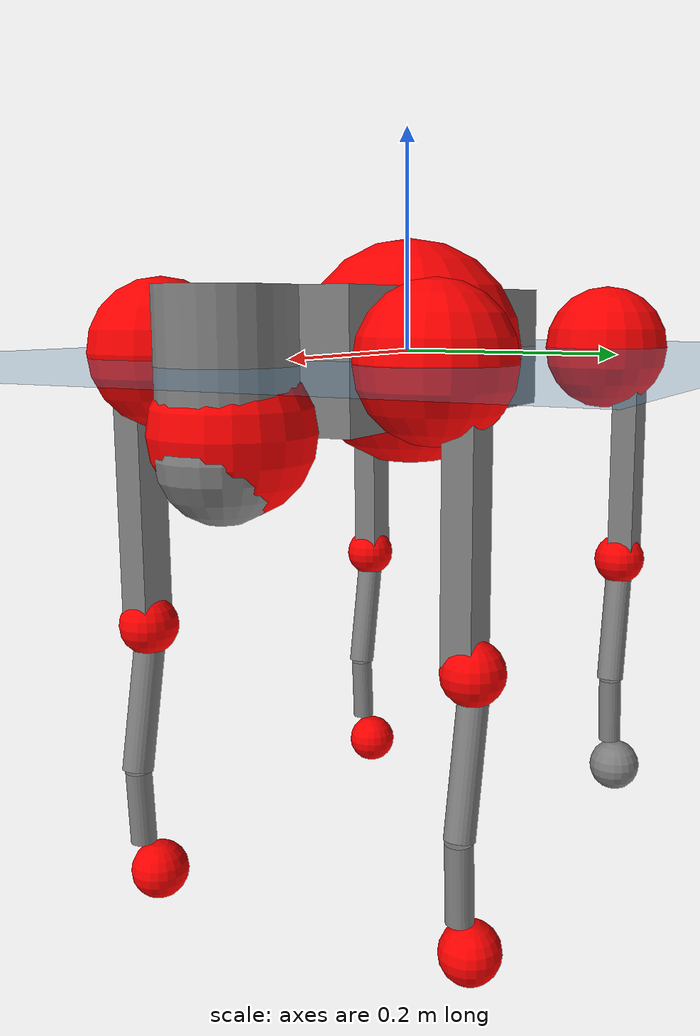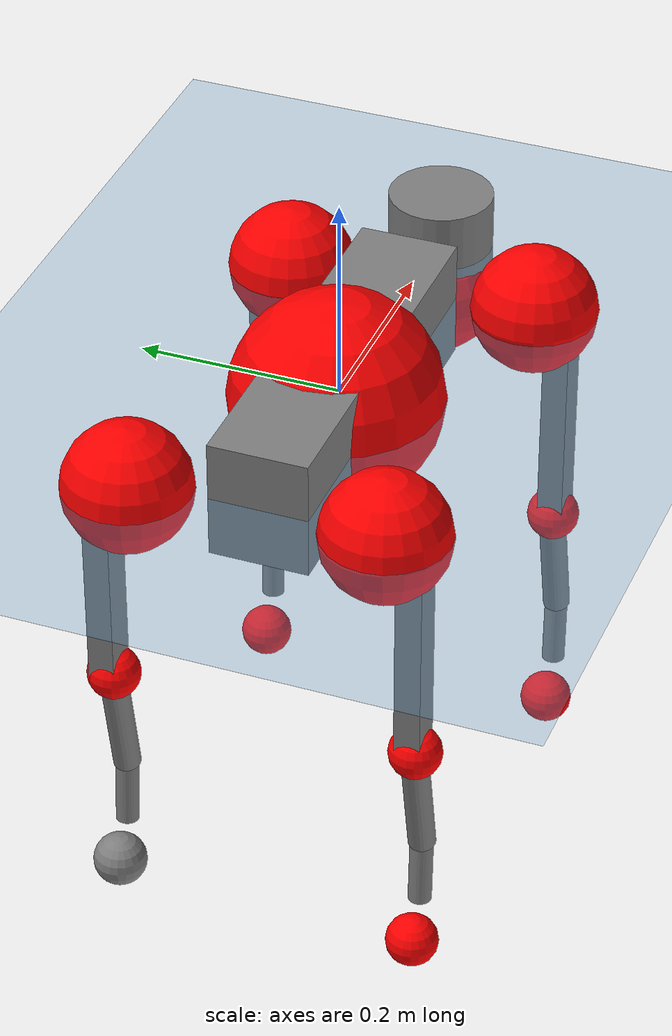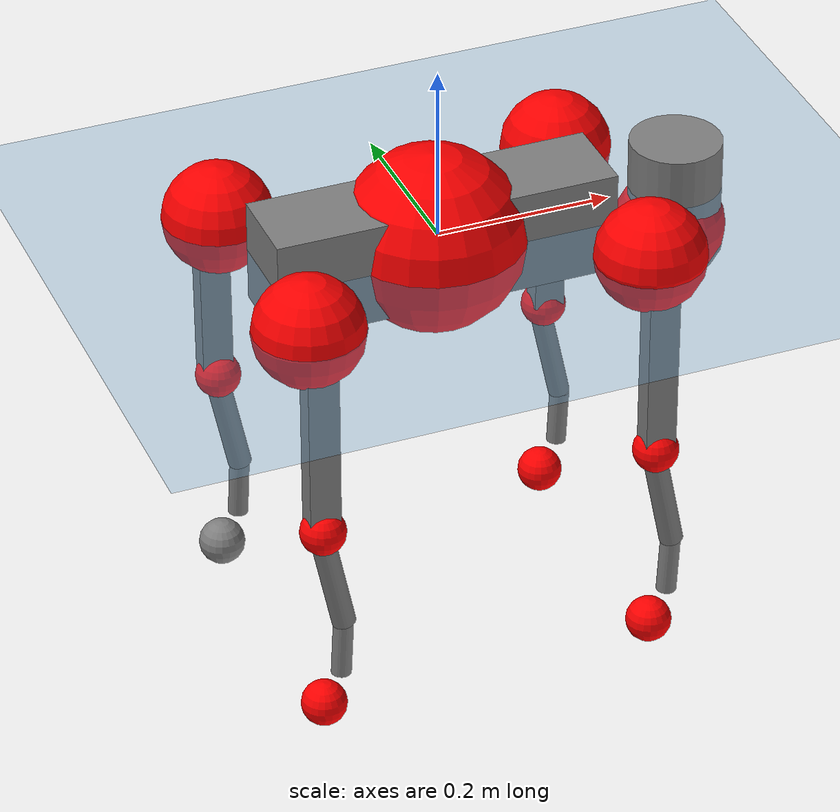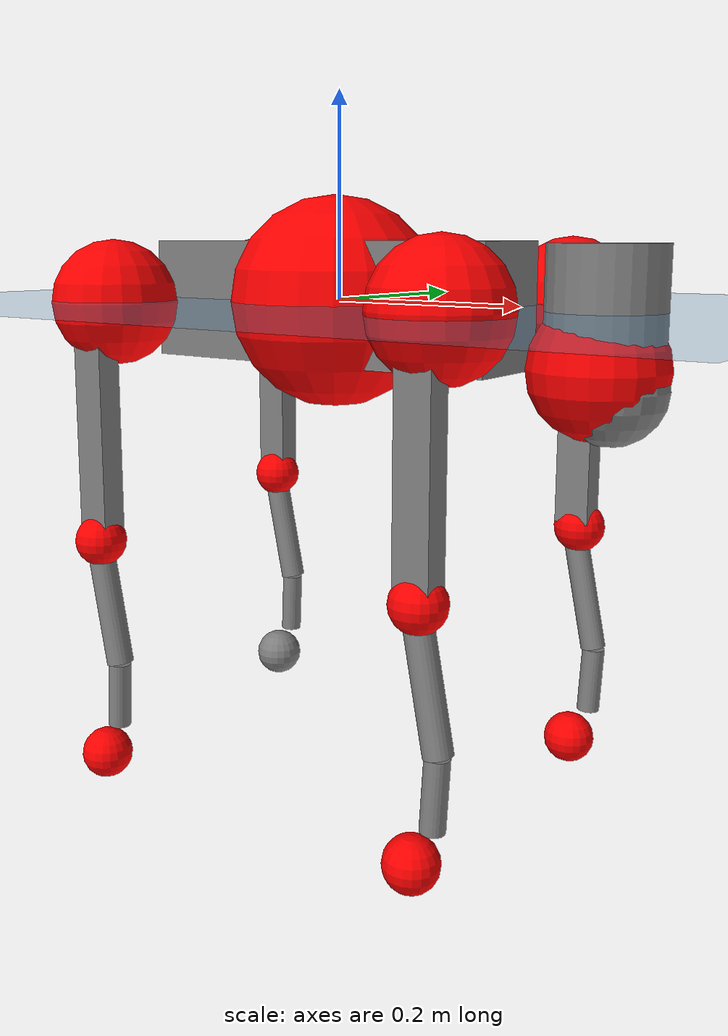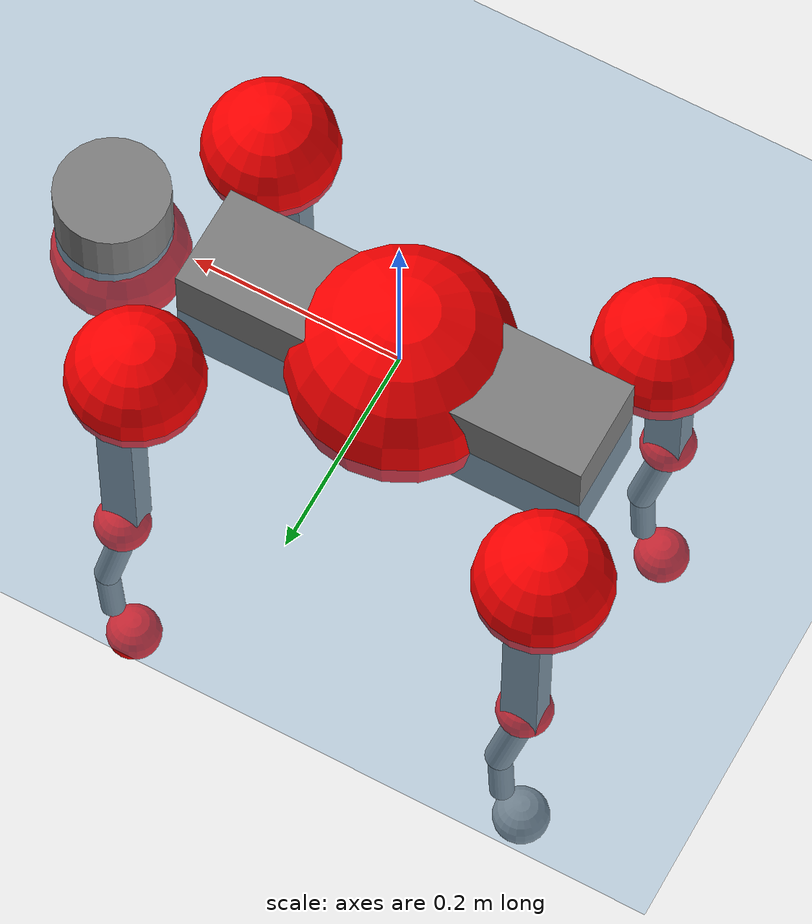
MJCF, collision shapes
<mujoco model="go2">
  <compiler angle="radian" assetdir="assets" balanceinertia="true" inertiafromgeom="false"/>

  <option timestep="0.005" density="1.2" viscosity="2e-05"/>

  <size nkey="1"/>

  <visual>
    <quality shadowsize="8192"/>
    <map shadowclip="0.5"/>
  </visual>

  <default>
    <default class="/">
      <geom contype="0" conaffinity="0" group="1" solref="-1000 -80"/>
      <site size="0.01 0.005 0.005" group="5"/>
      <general forcelimited="true" biastype="affine" gainprm="20" biasprm="0 -20 -0.5"/>
      <default class="go2">
        <joint armature="0.01" damping="0.01" frictionloss="0.2"/>
        <geom condim="1" margin="0.001"/>
        <default class="visual">
          <geom type="mesh" group="2"/>
        </default>
        <default class="collision">
          <geom group="3"/>
          <default class="foot">
            <geom size="0.022 0 0" condim="6" priority="1" friction="0.8 0.02 0.01" solimp="0.015 1 0.022"/>
          </default>
        </default>
        <default class="reward_collision_sphere">
          <geom group="5" rgba="1 0 0 1"/>
        </default>
      </default>
    </default>
  </default>

  <asset>
    <texture type="skybox" colorspace="auto" name="//unnamed_texture_0" builtin="gradient" rgb1="0.95 0.95 0.95" rgb2="0.95 0.95 0.95" width="100" height="600"/>
    <texture type="2d" colorspace="auto" name="texplane" builtin="checker" rgb1="0.345 0.575 0.748" rgb2="0.345 0.575 0.748" markrgb="1 1 1" width="512" height="512"/>
    <material name="MatPlane" class="/" texture="texplane" texuniform="true" texrepeat="2 2" specular="0.9"/>
    <material name="metal" class="/" rgba="0.9 0.95 0.95 1"/>
    <material name="black" class="/" rgba="0 0 0 1"/>
    <material name="white" class="/"/>
    <material name="gray" class="/" rgba="0.671705 0.692426 0.77427 1"/>
    <mesh name="base_0" class="/" file="base_0.obj"/>
    <mesh name="base_1" class="/" file="base_1.obj"/>
    <mesh name="base_2" class="/" file="base_2.obj"/>
    <mesh name="base_3" class="/" file="base_3.obj"/>
    <mesh name="base_4" class="/" file="base_4.obj"/>
    <mesh name="hip_0" class="/" file="hip_0.obj"/>
    <mesh name="hip_1" class="/" file="hip_1.obj"/>
    <mesh name="thigh_0" class="/" file="thigh_0.obj"/>
    <mesh name="thigh_1" class="/" file="thigh_1.obj"/>
    <mesh name="thigh_mirror_0" class="/" file="thigh_mirror_0.obj"/>
    <mesh name="thigh_mirror_1" class="/" file="thigh_mirror_1.obj"/>
    <mesh name="calf_0" class="/" file="calf_0.obj"/>
    <mesh name="calf_1" class="/" file="calf_1.obj"/>
    <mesh name="calf_mirror_0" class="/" file="calf_mirror_0.obj"/>
    <mesh name="calf_mirror_1" class="/" file="calf_mirror_1.obj"/>
    <mesh name="foot" class="/" file="foot.obj"/>
  </asset>

  <worldbody>
    <geom name="floor" class="/" size="100 100 0.125" type="plane" group="0" material="MatPlane"/>
    <light name="toplight_shadow" class="/" pos="0 0 5" dir="0.0990148 0.0990148 -0.990148" type="directional" ambient="0.04 0.04 0.04" diffuse="0.55 0.55 0.55" specular="0.12 0.12 0.12"/>
    <light name="toplight_fill" class="/" pos="0 0 5" dir="0.0990148 0.0990148 -0.990148" type="directional" castshadow="false" ambient="0.04 0.04 0.04" diffuse="0.3 0.3 0.3" specular="0.08 0.08 0.08"/>
    <body name="trunk" childclass="go2" pos="-0.0051376 0.000731636 -0.0018457" quat="1 -0.000186042 -0.000244694 -0.000924188">
      <inertial pos="0.0209856 -0.00220408 -0.00582801" quat="-0.00360027 0.714617 -0.00202482 0.699504" mass="7.95269" diaginertia="0.0954264 0.105134 0.0367496"/>
      <joint name="//unnamed_joint_0" type="free" armature="0" damping="0" frictionloss="0"/>
      <geom name="//unnamed_geom_1" class="visual" material="black" mesh="base_0"/>
      <geom name="//unnamed_geom_2" class="visual" material="black" mesh="base_1"/>
      <geom name="//unnamed_geom_3" class="visual" material="black" mesh="base_2"/>
      <geom name="//unnamed_geom_4" class="visual" material="white" mesh="base_3"/>
      <geom name="//unnamed_geom_5" class="visual" material="gray" mesh="base_4"/>
      <geom name="trunk_1" class="collision" size="0.19552 0.0485942 0.0592486" type="box"/>
      <geom name="trunk_2" class="collision" size="0.0519724 0.0467752" pos="0.285319 0 0.0108791" type="cylinder"/>
      <geom name="trunk_3" class="collision" size="0.0488541" pos="0.293328 0 -0.0652746"/>
      <geom name="//unnamed_geom_9" class="reward_collision_sphere" size="0.103945"/>
      <geom name="//unnamed_geom_10" class="reward_collision_sphere" size="0.0623669" pos="0.280314 0 -0.048956"/>
      <site name="imu" pos="-0.016932 -0.0112662 0.0789213" size="0.0103945"/>
      <camera name="track" pos="0 -2.05863 0" quat="0.707107 0.707107 0 0" mode="trackcom"/>
      <camera name="ego_camera" pos="0.312349 0 0.048956" quat="-0.5 -0.5 0.5 0.5"/>
      <body name="FL_hip" pos="0.195055 0.0497251 0.00171912" quat="0.999998 -0.00129971 -0.000355216 0.00176147">
        <inertial pos="0.000566342 0.0015571 -0.00114869" quat="0.497623 0.498131 0.504523 0.499695" mass="0.730451" diaginertia="0.000852375 0.000701549 0.000700516"/>
        <joint name="FL_hip_joint" pos="0 0 0" axis="0.999206 0.0322094 -0.0234515" stiffness="0.0302511" range="-1.08566 1.04829" armature="0.013693" damping="0.0155896" frictionloss="0.205472"/>
        <geom name="//unnamed_geom_11" class="visual" material="metal" mesh="hip_0"/>
        <geom name="//unnamed_geom_12" class="visual" material="gray" mesh="hip_1"/>
        <geom name="//unnamed_geom_13" class="collision" size="0.0478146 0.020789" pos="0 0.0823453 0" quat="0.707107 0.707107 0 0" type="cylinder"/>
        <geom name="//unnamed_geom_14" class="reward_collision_sphere" size="0.0623669" pos="0 0.0720521 0"/>
        <body name="FL_thigh" pos="0.00180517 0.0990497 0.0014134" quat="1 -5.78412e-05 2.95183e-06 6.01152e-05">
          <inertial pos="-0.00597743 -0.0226283 -0.0285" quat="0.829646 0.0847356 -0.0200685 0.551457" mass="1.29838" diaginertia="0.00596348 0.00663294 0.00130413"/>
          <joint name="FL_thigh_joint" pos="0 0 0" axis="0.00494876 0.999988 -0.000534737" stiffness="0.0113012" range="-1.56182 3.49515" armature="0.00806003" damping="0.0121115" frictionloss="0.219496"/>
          <geom name="//unnamed_geom_15" class="visual" material="metal" mesh="thigh_0"/>
          <geom name="//unnamed_geom_16" class="visual" material="gray" mesh="thigh_1"/>
          <geom name="//unnamed_geom_17" class="collision" size="0.110701 0.0127332 0.0176706" pos="0 0 -0.115862" quat="0.707107 0 0.707107 0" type="box"/>
          <body name="FL_calf" pos="0.000752788 0.0073076 -0.233455" quat="0.999999 -0.000826458 0.000922426 -0.000357894">
            <inertial pos="0.00606088 -0.0025684 -0.155311" quat="0.702079 0.00270357 0.0228822 0.711726" mass="0.261443" diaginertia="0.0015309 0.00165118 8.38434e-05"/>
            <joint name="FL_calf_joint" pos="0 0 0" axis="0.00165903 0.999999 -0.000488814" stiffness="0.0115789" range="-2.73135 -0.88081" armature="0.010126" damping="0.0207697" frictionloss="0.229642"/>
            <geom name="//unnamed_geom_18" class="visual" material="gray" mesh="calf_0"/>
            <geom name="//unnamed_geom_19" class="visual" material="black" mesh="calf_1"/>
            <geom name="FL_calf0" class="collision" size="0.0124734 0.0623669" pos="0.00800896 0 -0.0652746" quat="0.994493 0 -0.104807 0" type="cylinder"/>
            <geom name="//unnamed_geom_21" class="collision" size="0.0114339 0.0337821" pos="0.0200224 0 -0.161011" quat="0.999688 0 0.0249974 0" type="cylinder"/>
            <geom name="//unnamed_geom_22" class="visual" pos="0 0 -0.231725" quat="1 0 0 0" material="black" mesh="foot"/>
            <geom name="FL_foot" class="foot" size="0.0204002" pos="-0.00200224 0 -0.231725"/>
            <geom name="//unnamed_geom_24" class="reward_collision_sphere" size="0.0259862"/>
            <geom name="//unnamed_geom_25" class="reward_collision_sphere" size="0.0259862" pos="-0.00200224 0 -0.231725"/>
            <site name="FL_foot" class="foot" pos="-0.00200224 0 -0.231725" size="0.0103945"/>
          </body>
        </body>
      </body>
      <body name="FR_hip" pos="0.200751 -0.0548304 0.00452765" quat="1 0.000241385 0.000270644 -0.000853425">
        <inertial pos="-0.0122614 -0.000318325 0.00602877" quat="0.498938 0.509899 0.493126 0.497886" mass="0.72118" diaginertia="0.000801851 0.000650356 0.000673871"/>
        <joint name="FR_hip_joint" pos="0 0 0" axis="0.999689 -0.0244393 -0.00498468" stiffness="0.0153713" range="-0.930373 1.09174" armature="0.0101573" damping="0.00307914" frictionloss="0.251984"/>
        <geom name="//unnamed_geom_26" class="visual" pos="0 -5.1045e-10 -2.18942e-08" quat="4.63268e-05 1 0 0" material="metal" mesh="hip_0"/>
        <geom name="//unnamed_geom_27" class="visual" pos="0 -8.275e-10 5.41529e-08" quat="4.63268e-05 1 0 0" material="gray" mesh="hip_1"/>
        <geom name="//unnamed_geom_28" class="collision" size="0.0478146 0.020789" pos="0 -0.0823453 0" quat="0.707107 0.707107 0 0" type="cylinder"/>
        <geom name="//unnamed_geom_29" class="reward_collision_sphere" size="0.0623669" pos="0 -0.0720521 0"/>
        <body name="FR_thigh" pos="0.000561839 -0.10029 -0.00121114" quat="1 -1.36313e-05 2.21838e-05 2.53639e-05">
          <inertial pos="-0.00327873 0.0150335 -0.0338722" quat="0.551791 -0.0222427 0.0872348 0.829109" mass="1.3169" diaginertia="0.00592979 0.00705023 0.00135471"/>
          <joint name="FR_thigh_joint" pos="0 0 0" axis="0.00574437 -0.999874 -0.0147816" stiffness="0.00194007" range="-3.53592 1.56392" armature="0.00944536" damping="0.0263044" frictionloss="0.230833"/>
          <geom name="//unnamed_geom_30" class="visual" material="metal" mesh="thigh_mirror_0"/>
          <geom name="//unnamed_geom_31" class="visual" material="gray" mesh="thigh_mirror_1"/>
          <geom name="//unnamed_geom_32" class="collision" size="0.110701 0.0127332 0.0176706" pos="0 0 -0.115862" quat="0.707107 0 0.707107 0" type="box"/>
          <body name="FR_calf" pos="-0.000110975 0.00108443 -0.235966" quat="0.999994 -0.00277736 0.00207633 2.03285e-05">
            <inertial pos="-0.00178099 0.00255419 -0.158042" quat="0.698874 -0.0116495 0.00716132 0.715114" mass="0.2775" diaginertia="0.00144763 0.00154895 7.18567e-05"/>
            <joint name="FR_calf_joint" pos="0 0 0" axis="-0.00181874 -0.999996 0.00217098" range="0.961541 2.68788" armature="0.0116625" damping="0" frictionloss="0.156857"/>
            <geom name="//unnamed_geom_33" class="visual" material="gray" mesh="calf_mirror_0"/>
            <geom name="//unnamed_geom_34" class="visual" material="black" mesh="calf_mirror_1"/>
            <geom name="FR_calf0" class="collision" size="0.0135128 0.0623669" pos="0.0100112 0 -0.0652746" quat="0.995004 0 -0.0998334 0" type="cylinder"/>
            <geom name="//unnamed_geom_36" class="collision" size="0.0114339 0.0337821" pos="0.0200224 0 -0.161011" quat="0.999688 0 0.0249974 0" type="cylinder"/>
            <geom name="//unnamed_geom_37" class="visual" pos="0 0 -0.231725" quat="1 0 0 0" material="black" mesh="foot"/>
            <geom name="FR_foot" class="foot" size="0.0218456" pos="-0.00200224 0 -0.231725"/>
            <geom name="//unnamed_geom_39" class="reward_collision_sphere" size="0.0259862"/>
            <geom name="//unnamed_geom_40" class="reward_collision_sphere" size="0.0259862" pos="-0.00200224 0 -0.231725"/>
            <site name="FR_foot" class="foot" pos="-0.00200224 0 -0.231725" size="0.0103945"/>
          </body>
        </body>
      </body>
      <body name="RL_hip" pos="-0.202002 0.0522902 0.000369128" quat="1 -0.000125986 -0.000348744 -0.000395384">
        <inertial pos="-0.000797017 0.00968204 -0.000334568" quat="0.491644 0.500049 0.490556 0.517293" mass="0.767646" diaginertia="0.000874082 0.000686724 0.000777236"/>
        <joint name="RL_hip_joint" pos="0 0 0" axis="-1 0.000645599 0.000288626" stiffness="0.00433701" range="-1.0959 1.06453" armature="0.0103907" damping="0" frictionloss="0.195906"/>
        <geom name="//unnamed_geom_41" class="visual" pos="7.56083e-10 0 1.4821e-07" quat="4.63268e-05 0 1 0" material="metal" mesh="hip_0"/>
        <geom name="//unnamed_geom_42" class="visual" pos="1.2257e-09 0 1.31441e-07" quat="4.63268e-05 0 1 0" material="gray" mesh="hip_1"/>
        <geom name="//unnamed_geom_43" class="collision" size="0.0478146 0.020789" pos="0 0.0823453 0" quat="0.707107 0.707107 0 0" type="cylinder"/>
        <geom name="//unnamed_geom_44" class="reward_collision_sphere" size="0.0623669" pos="0 0.0720521 0"/>
        <body name="RL_thigh" pos="-0.000958586 0.0986078 0.00225975" quat="1 -6.60669e-05 -0.000462356 -1.04244e-05">
          <inertial pos="-0.00171855 -0.029531 -0.0340458" quat="0.830173 0.0975443 -0.0305683 0.548055" mass="1.28191" diaginertia="0.00593767 0.00665412 0.00141285"/>
          <joint name="RL_thigh_joint" pos="0 0 0" axis="0.0267848 0.999632 -0.00426593" stiffness="0.0185466" range="-0.571352 4.50665" armature="0.00735784" damping="0.0113758" frictionloss="0.162867"/>
          <geom name="//unnamed_geom_45" class="visual" material="metal" mesh="thigh_0"/>
          <geom name="//unnamed_geom_46" class="visual" material="gray" mesh="thigh_1"/>
          <geom name="//unnamed_geom_47" class="collision" size="0.110701 0.0127332 0.0176706" pos="0 0 -0.115862" quat="0.707107 0 0.707107 0" type="box"/>
          <body name="RL_calf" pos="0.00198595 -0.00419607 -0.22469" quat="0.999993 0.00348788 -2.21561e-05 0.00126172">
            <inertial pos="0.00818675 0.000171111 -0.162051" quat="0.708565 0.00237047 -0.0069995 0.705607" mass="0.288845" diaginertia="0.00147731 0.00168322 8.16281e-05"/>
            <joint name="RL_calf_joint" pos="0 0 0" axis="-0.00495611 0.999986 0.00192044" stiffness="0.00132173" range="-2.68686 -0.799225" armature="0.0113719" damping="0.00199167" frictionloss="0.24437"/>
            <geom name="//unnamed_geom_48" class="visual" material="gray" mesh="calf_0"/>
            <geom name="//unnamed_geom_49" class="visual" material="black" mesh="calf_1"/>
            <geom name="RL_calf0" class="collision" size="0.0135128 0.0623669" pos="0.0100112 0 -0.0652746" quat="0.995004 0 -0.0998334 0" type="cylinder"/>
            <geom name="//unnamed_geom_51" class="collision" size="0.0114339 0.0337821" pos="0.0200224 0 -0.161011" quat="0.999688 0 0.0249974 0" type="cylinder"/>
            <geom name="//unnamed_geom_52" class="visual" pos="0 0 -0.231725" quat="1 0 0 0" material="black" mesh="foot"/>
            <geom name="RL_foot" class="foot" size="0.0265293" pos="-0.00200224 0 -0.231725"/>
            <geom name="//unnamed_geom_54" class="reward_collision_sphere" size="0.0259862"/>
            <geom name="//unnamed_geom_55" class="reward_collision_sphere" size="0.0259862" pos="-0.00200224 0 -0.231725"/>
            <site name="RL_foot" class="foot" pos="-0.00200224 0 -0.231725" size="0.0103945"/>
          </body>
        </body>
      </body>
      <body name="RR_hip" pos="-0.187049 -0.0470149 -0.00157387" quat="1 -0.000368342 0.000258829 0.000385567">
        <inertial pos="0.00264753 -0.00254703 -0.000117785" quat="0.505707 0.480299 0.484414 0.528126" mass="0.740629" diaginertia="0.000852015 0.000652881 0.00069641"/>
        <joint name="RR_hip_joint" pos="0 0 0" axis="-0.999419 0.00965905 0.032679" range="-1.05572 1.07696" armature="0.00999411" damping="0.00781121" frictionloss="0.213875"/>
        <geom name="//unnamed_geom_56" class="visual" pos="-7.55107e-10 -5.1045e-10 1.70104e-07" quat="2.14617e-09 4.63268e-05 4.63268e-05 -1" material="metal" mesh="hip_0"/>
        <geom name="//unnamed_geom_57" class="visual" pos="-1.22812e-09 -8.275e-10 7.72881e-08" quat="2.14617e-09 4.63268e-05 4.63268e-05 -1" material="gray" mesh="hip_1"/>
        <geom name="//unnamed_geom_58" class="collision" size="0.0478146 0.020789" pos="0 -0.0823453 0" quat="0.707107 0.707107 0 0" type="cylinder"/>
        <geom name="//unnamed_geom_59" class="reward_collision_sphere" size="0.0623669" pos="0 -0.0720521 0"/>
        <body name="RR_thigh" pos="0.000532111 -0.100122 -0.00558418" quat="1 5.40651e-05 0.000471862 4.30259e-05">
          <inertial pos="-0.00171844 0.0213189 -0.0341139" quat="0.52834 -0.000574261 0.102666 0.842803" mass="1.26568" diaginertia="0.00589778 0.0064158 0.00121388"/>
          <joint name="RR_thigh_joint" pos="0 0 0" axis="-0.0115658 -0.999923 -0.00460103" stiffness="0.0139893" range="-4.54112 0.544396" armature="0.0083768" damping="0.0319316" frictionloss="0.21149"/>
          <geom name="//unnamed_geom_60" class="visual" material="metal" mesh="thigh_mirror_0"/>
          <geom name="//unnamed_geom_61" class="visual" material="gray" mesh="thigh_mirror_1"/>
          <geom name="//unnamed_geom_62" class="collision" size="0.110701 0.0127332 0.0176706" pos="0 0 -0.115862" quat="0.707107 0 0.707107 0" type="box"/>
          <body name="RR_calf" pos="-1.37034e-05 -0.00267953 -0.234567" quat="1 -0.00038902 0.000457558 0.000420739">
            <inertial pos="0.0112656 0.00760581 -0.160059" quat="0.704632 -0.0015174 -0.00617593 0.709544" mass="0.249639" diaginertia="0.00149864 0.0015514 7.81449e-05"/>
            <joint name="RR_calf_joint" pos="0 0 0" axis="0.00530311 -0.999986 0.000591172" range="0.817629 2.5993" armature="0.0101824" damping="0.0162795" frictionloss="0.141281"/>
            <geom name="//unnamed_geom_63" class="visual" material="gray" mesh="calf_mirror_0"/>
            <geom name="//unnamed_geom_64" class="visual" material="black" mesh="calf_mirror_1"/>
            <geom name="RR_calf0" class="collision" size="0.0135128 0.0623669" pos="0.0100112 0 -0.0652746" quat="0.995004 0 -0.0998334 0" type="cylinder"/>
            <geom name="//unnamed_geom_66" class="collision" size="0.0114339 0.0337821" pos="0.0200224 0 -0.161011" quat="0.999688 0 0.0249974 0" type="cylinder"/>
            <geom name="//unnamed_geom_67" class="visual" pos="0 0 -0.231725" quat="1 0 0 0" material="black" mesh="foot"/>
            <geom name="RR_foot" class="foot" size="0.0173971" pos="-0.00200224 0 -0.231725"/>
            <geom name="//unnamed_geom_69" class="reward_collision_sphere" size="0.0259862"/>
            <geom name="//unnamed_geom_70" class="reward_collision_sphere" size="0.0259862" pos="-0.00200224 0 -0.231725"/>
            <site name="RR_foot" class="foot" pos="-0.00200224 0 -0.231725" size="0.0103945"/>
          </body>
        </body>
      </body>
    </body>
  </worldbody>

  <contact>
    <pair class="/" geom1="floor" geom2="FL_foot" name="//unnamed_contact_0"/>
    <pair class="/" geom1="floor" geom2="FR_foot" name="//unnamed_contact_1"/>
    <pair class="/" geom1="floor" geom2="RL_foot" name="//unnamed_contact_2"/>
    <pair class="/" geom1="floor" geom2="RR_foot" name="//unnamed_contact_3"/>
  </contact>

  <actuator>
    <general name="FL_hip" class="/" joint="FL_hip_joint" forcerange="-24.4469 24.4469" gainprm="20.5878" biasprm="0 -20.5878 -0.539221"/>
    <general name="FL_thigh" class="/" joint="FL_thigh_joint" forcerange="-28.6122 28.6122" gainprm="20.5878" biasprm="0 -20.5878 -0.539221"/>
    <general name="FL_calf" class="/" joint="FL_calf_joint" forcerange="-47.6319 47.6319" gainprm="20.5878" biasprm="0 -20.5878 -0.539221"/>
    <general name="FR_hip" class="/" joint="FR_hip_joint" forcerange="-24.6438 24.6438" gainprm="20.5878" biasprm="0 -20.5878 -0.539221"/>
    <general name="FR_thigh" class="/" joint="FR_thigh_joint" forcerange="-26.531 26.531" gainprm="20.5878" biasprm="0 -20.5878 -0.539221"/>
    <general name="FR_calf" class="/" joint="FR_calf_joint" forcerange="-44.1597 44.1597" gainprm="20.5878" biasprm="0 -20.5878 -0.539221"/>
    <general name="RL_hip" class="/" joint="RL_hip_joint" forcerange="-24.7271 24.7271" gainprm="20.5878" biasprm="0 -20.5878 -0.539221"/>
    <general name="RL_thigh" class="/" joint="RL_thigh_joint" forcerange="-23.0851 23.0851" gainprm="20.5878" biasprm="0 -20.5878 -0.539221"/>
    <general name="RL_calf" class="/" joint="RL_calf_joint" forcerange="-48.6814 48.6814" gainprm="20.5878" biasprm="0 -20.5878 -0.539221"/>
    <general name="RR_hip" class="/" joint="RR_hip_joint" forcerange="-23.0894 23.0894" gainprm="20.5878" biasprm="0 -20.5878 -0.539221"/>
    <general name="RR_thigh" class="/" joint="RR_thigh_joint" forcerange="-25.974 25.974" gainprm="20.5878" biasprm="0 -20.5878 -0.539221"/>
    <general name="RR_calf" class="/" joint="RR_calf_joint" forcerange="-60.3964 60.3964" gainprm="20.5878" biasprm="0 -20.5878 -0.539221"/>
  </actuator>

  <sensor>
    <gyro site="imu" name="imu_angular_velocity"/>
    <velocimeter site="imu" name="imu_linear_velocity"/>
    <framelinvel objtype="site" objname="FL_foot" name="FL_foot_global_linear_velocity"/>
    <framelinvel objtype="site" objname="FR_foot" name="FR_foot_global_linear_velocity"/>
    <framelinvel objtype="site" objname="RL_foot" name="RL_foot_global_linear_velocity"/>
    <framelinvel objtype="site" objname="RR_foot" name="RR_foot_global_linear_velocity"/>
  </sensor>

  <keyframe>
    <key name="home" qpos="0 0 0.325 1 0 0 0 0.1 0.8 -1.5 -0.1 -0.8 1.5 -0.1 0.8 -1.5 0.1 -0.8 1.5"/>
  </keyframe>
</mujoco>
